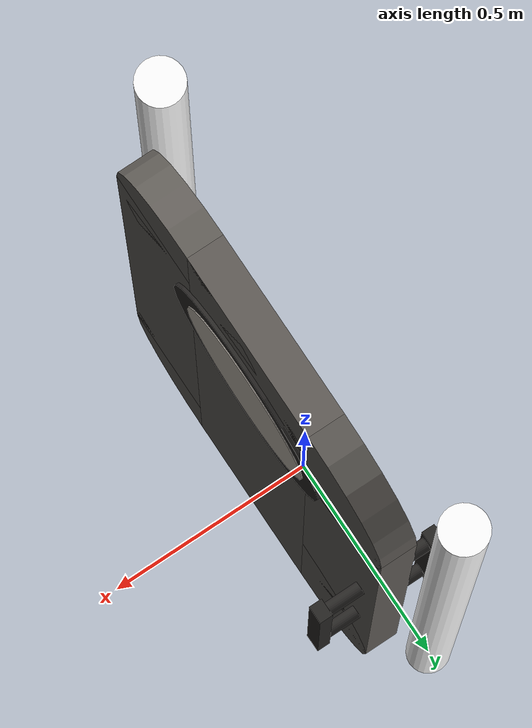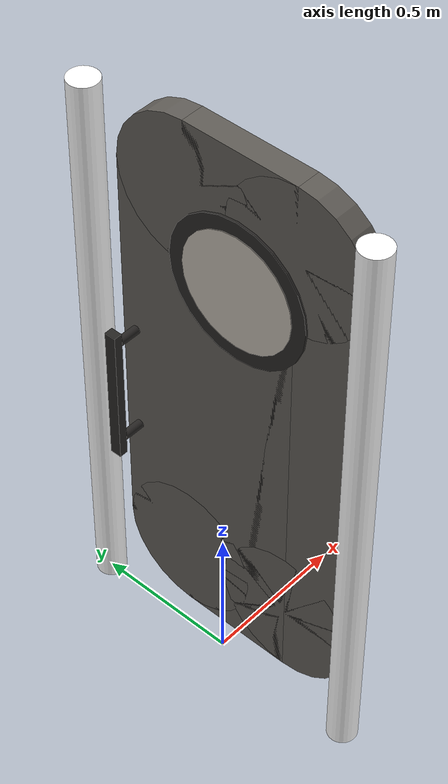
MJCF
<?xml version="1.0" encoding="utf-8"?>
<!-- from https://github.com/vikashplus/mj_envs/tree/master/mj_envs/hand_manipulation_suite/assets -->
<!-- Information about door can be found in this paper: https://arxiv.org/pdf/1709.10087.pdf -->

<mujoco model="door_lock">
  <asset>
    <texture file="../textures/steel-brushed.png" type="cube" name="metal" />
    <texture file="../textures/navy.png" type="cube" name="glass" />
    <material name="MatBright" texture="metal" specular="1" shininess="0.3" rgba="0.5 0.5 0.5 1" />
    <material name="MatDark" texture="metal" specular="0.2" shininess="0.3" rgba="0.2 0.2 0.2 1" />
    <material name="MatGlass" texture="glass" specular="1" shininess="0.3" rgba="1.0 1.0 1.0 1" />
  </asset>
    <worldbody>
      <body>
        <body name="object">
          <body name="object" pos="0 0 1.0">
            <body name="frame" pos="0 0 0" quat="0.707107 0 0 -0.707107">
              <geom name="r_frame"
                size="0.05 1.0" pos="0.5 0 0" type="cylinder" rgba="1 1 1 1"
                contype="0" conaffinity="0"  group="1"
                />
              <geom name="l_frame"
                size="0.05 1.0" pos="-0.5 0 0" type="cylinder" rgba="1 1 1 1"
                contype="0" conaffinity="0"  group="1"
                />
              <body name="door" pos="0 0.1 0">
                <inertial pos="0 0 0" mass="1.47392" diaginertia="0.472637 0.580381 0.109316"/>
                <!-- Density 20 kg/m^3 -->
                <joint name="slide" type="slide" pos="-0.5 0 0" axis="1 0 0" range="0.0 0.8" limited="true"
                  damping="1" frictionloss="0"
                  />
                <geom fromto="0 -0.048 0.5 0 0.048 0.5" size="0.25" type="cylinder" material="MatDark"
                  contype="0" conaffinity="0"  group="1"
                  />
                <geom fromto="0 -0.05 0.5 0 0.05 0.5" size="0.2" type="cylinder" material="MatGlass"
                  contype="0" conaffinity="0"  group="1"
                />
                <geom size="0.45 0.04 0.73" type="box" friction="1 1 1" group="0" material="MatBright"/>
                <geom size="0.20 0.04 0.98" type="box" friction="1 1 1" group="0" material="MatBright"/>
                <geom fromto=" 0.2 -0.04  0.73  0.2  0.04  0.73" size="0.25" type="cylinder" friction="1 1 1" group="0" material="MatBright"/>
                <geom fromto=" 0.2 -0.04 -0.73  0.2  0.04 -0.73" size="0.25" type="cylinder" friction="1 1 1" group="0" material="MatBright"/>
                <geom fromto="-0.2 -0.04  0.73 -0.2  0.04  0.73" size="0.25" type="cylinder" friction="1 1 1" group="0" material="MatBright"/>
                <geom fromto="-0.2 -0.04 -0.73 -0.2  0.04 -0.73" size="0.25" type="cylinder" friction="1 1 1" group="0" material="MatBright"/>

                <body name="handle" pos="-0.4 0 -0.1">
                  <inertial pos="-0.017762 0 0" quat="0.365653 0.605347 -0.36522 0.605365" mass="0.1" diaginertia="0.0483771 0.0410001 0.0111013" />
                  <geom fromto="0 0.12  0.2 0 -0.12  0.2" size="0.015" type="cylinder" group="0" name="handle_up" material="MatDark"/>
                  <geom fromto="0 0.12 -0.2 0 -0.12 -0.2" size="0.015" type="cylinder" group="0" name="handle_bottom" material="MatDark"/>
                  <geom size="0.02 0.015 0.25" pos="0  0.135 0" type="box" group="0" name="front_handle" material="MatDark"/>
                  <geom size="0.02 0.015 0.25" pos="0 -0.135 0" type="box" group="0" name="back_handle" material="MatDark"/>
                  <!-- Don't render the door handle site by default -->
                  <site name="handle" pos="0.125 -0.10 0" size="0.02" rgba="0 0 1 0" />
                </body>
              </body>
            </body>
          </body>
        </body>
        <site name="bottom_site" pos="0 0 -0.6" rgba="0 0 0 0" size="0.005"/>
        <site name="top_site" pos="0 0 0.6" rgba="0 0 0 0" size="0.005"/>
        <site name="horizontal_radius_site" pos="0.3 0 0" rgba="0 0 0 0" size="0.1"/>
      </body>
    </worldbody>
</mujoco>
